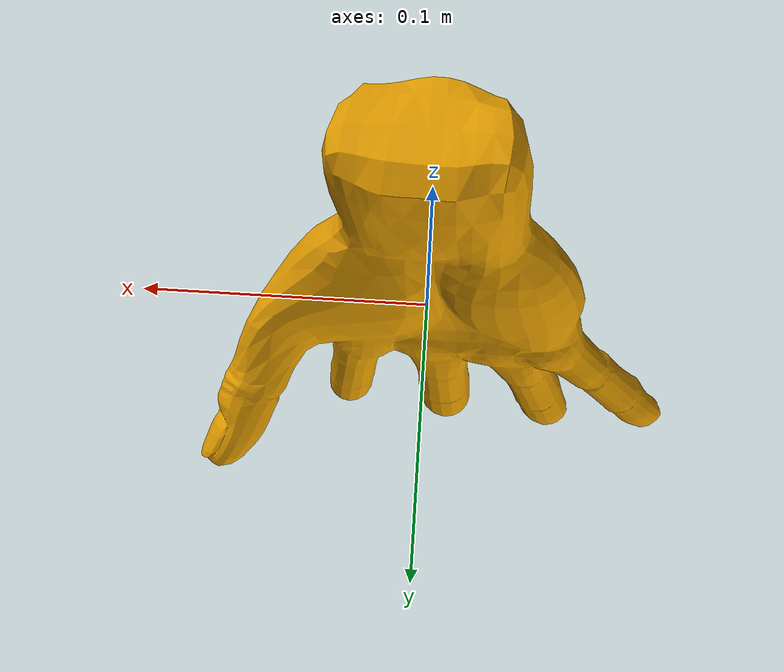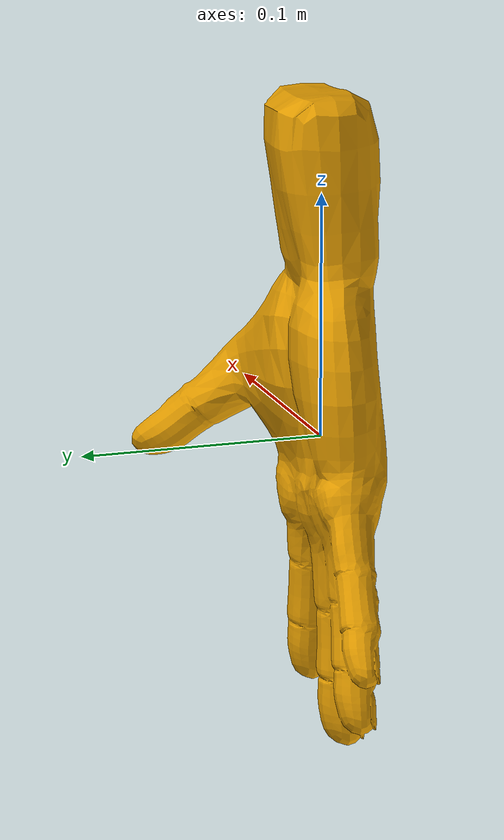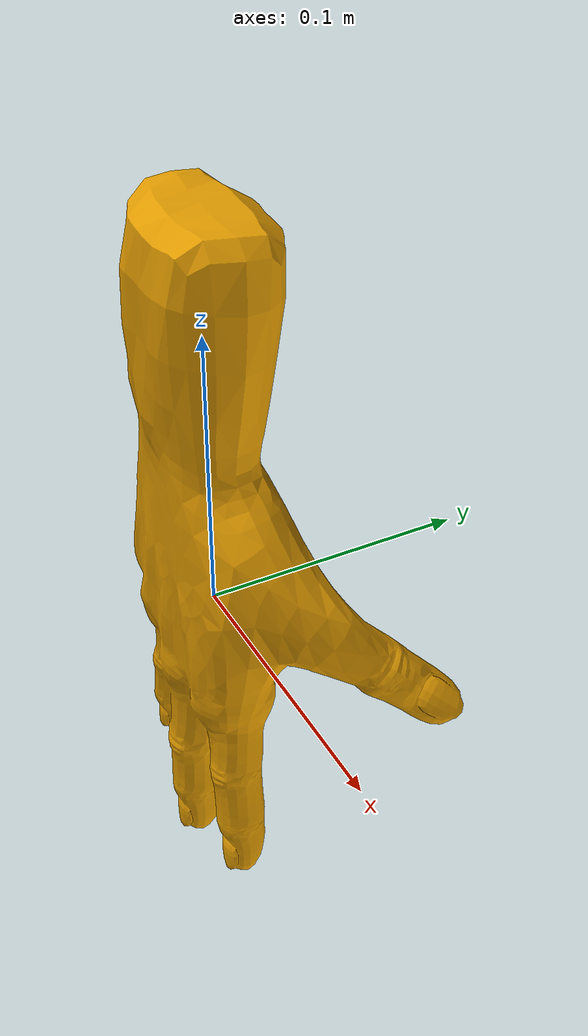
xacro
<?xml version="1.0"?>

<robot name="hand_right">

    <gazebo reference="link_base">
        <turnGravityOff>true</turnGravityOff>
    </gazebo>
    <gazebo>
        <plugin name="gazebo_ros_template" filename="libgazebo_ros_template.so"/>
    </gazebo>

    <link name="link_base">
        <visual>
            <origin xyz="0.0 0.0 0.0" rpy="0.0 0.0 0.0"/>
            <geometry><mesh filename="package://wai_oa_gazebo/resources/reps/hand_right/hand_right.dae"/></geometry>
        </visual>
    </link>

</robot>
